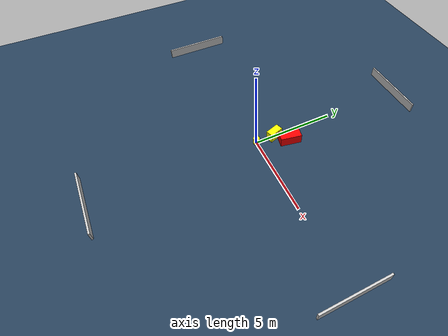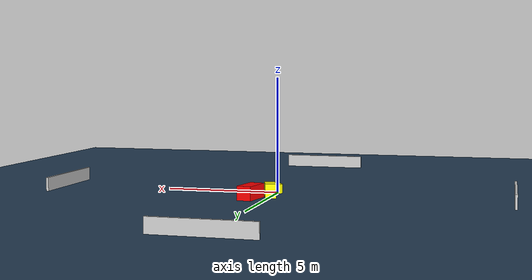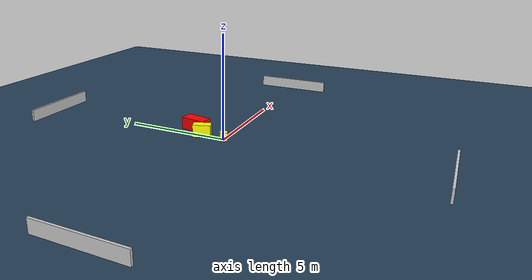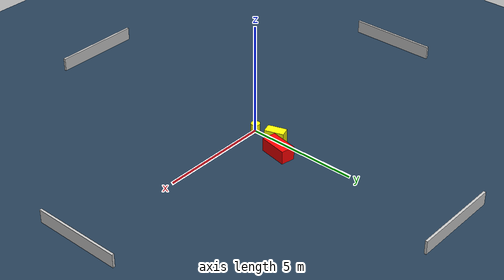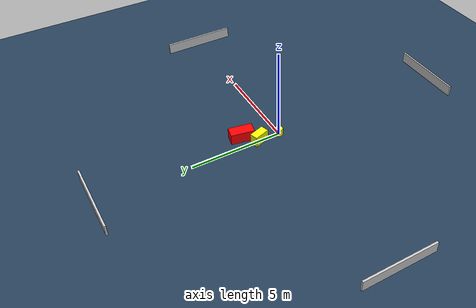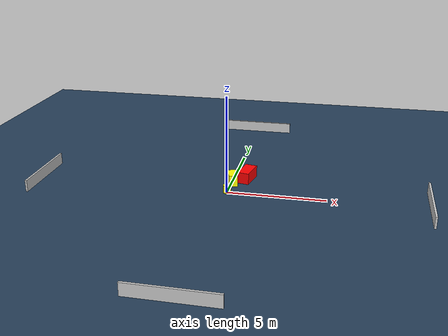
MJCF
<?xml version="1.0" ?>
<mujoco model="generated_environment">
  <option timestep="0.01" integrator="RK4" cone="elliptic"/>
  <default>
    <geom density="1"/>
  </default>
  <asset>
    <texture builtin="gradient" height="3072" name="skybox" rgb1="0.3 0.5 0.7" rgb2="0 0 0" type="skybox" width="512"/>
    <texture builtin="checker" height="300" name="groundplane" rgb1="0.2 0.3 0.4" rgb2="0.1 0.2 0.3" type="2d" width="300"/>
    <material name="groundplane" reflectance="0.2" texrepeat="5 5" texture="groundplane"/>
  </asset>
  <worldbody>
    <light dir="0 0 -1" directional="true" pos="0 0 1.5"/>
    <geom condim="3" friction="0.5 0.005 0.001" material="groundplane" name="floor" pos="0 0 0" size="0 0 0.05" type="plane"/>
    <body name="walls">
      <geom name="wall_1" condim="4" pos="-10.0 0.0 0.3" rgba="0.800000011920929 0.800000011920929 0.800000011920929 1.0" size="0.05 2.0 0.3" type="box"/>
      <geom name="wall_2" condim="4" pos="10.0 0.0 0.3" rgba="0.800000011920929 0.800000011920929 0.800000011920929 1.0" size="0.05 2.0 0.3" type="box"/>
      <geom name="wall_3" condim="4" pos="0.0 -10.0 0.3" rgba="0.800000011920929 0.800000011920929 0.800000011920929 1.0" size="2.0 0.05 0.3" type="box"/>
      <geom name="wall_4" condim="4" pos="0.0 10.0 0.3" rgba="0.800000011920929 0.800000011920929 0.800000011920929 1.0" size="2.0 0.05 0.3" type="box"/>
    </body>
    <body name="robot">
      <joint name="joint_x" type="slide" pos="0 0 0" axis="1 0 0"/>
      <joint name="joint_y" type="slide" pos="0 0 0" axis="0 1 0"/>
      <geom name="robot" type="cylinder" pos="0.0 0.0 0.2" size="0.2 0.2 0.0" mass="5.0" friction="1.0 0.005 0.0001" condim="4" rgba="1.0 1.0 0.0 1.0"/>
    </body>
    <body name="obstacle_1_movable">
      <geom name="obstacle_1_movable" condim="4" pos="0.04295730412420504 1.1633811073455642 0.3" euler="0 0 288.0219355169095" friction="0.0 0.005 0.001" rgba="1.0 1.0 0.0 1.0" size="0.42837404496987713 0.2248136037439133 0.3" type="box" mass="0.1"/>
      <joint type="free"/>
    </body>
    <body name="obstacle_2_static">
      <geom name="obstacle_2_static" condim="4" pos="0.7003099423563268 1.8589905593602831 0.3" euler="0 0 169.30329548696025" friction="0.0 0.005 0.001" rgba="1.0 0.0 0.0 1.0" size="0.3122245254103391 0.6360095088978386 0.3" type="box"/>
    </body>
  </worldbody>
  <actuator>
    <motor name="actuator_x" joint="joint_x" gear="1" ctrlrange="-1 1"/>
    <motor name="actuator_y" joint="joint_y" gear="1" ctrlrange="-1 1"/>
  </actuator>
</mujoco>
